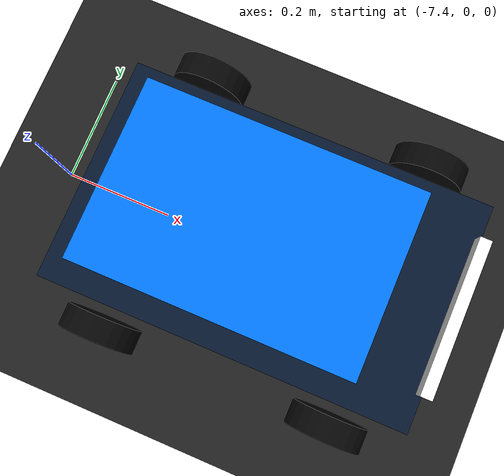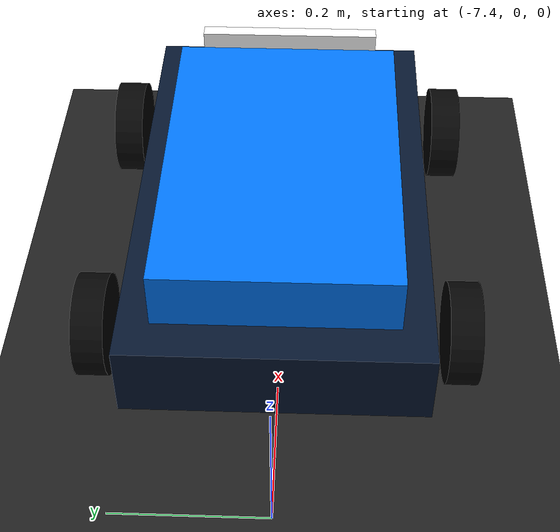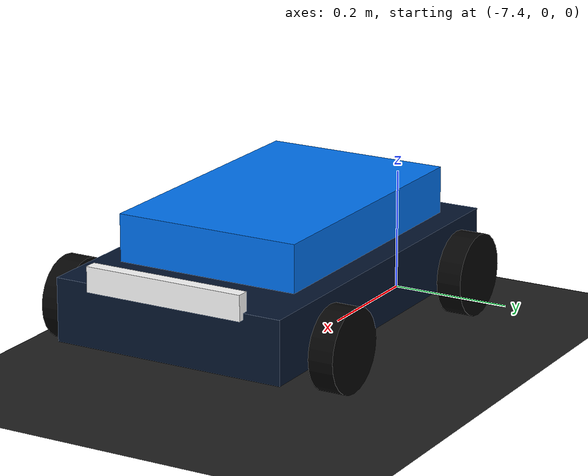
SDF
<sdf version="1.9">
 <world name="eight_shape_road_world">
  <model name="ground">
   <static>true</static>
   <link name="ground_link">
    <collision name="collision">
     <geometry><plane><normal>0 0 1</normal><size>50 50</size></plane></geometry>
    </collision>
    <visual name="visual">
     <geometry><plane><normal>0 0 1</normal><size>50 50</size></plane></geometry>
     <material><diffuse>0.12 0.12 0.12 1</diffuse></material>
    </visual>
   </link>
  </model>
  <include><uri>model://qcar_planb</uri><name>qcar</name><pose>-7 0 0.12 0 0 0</pose></include>
 </world>
</sdf>
